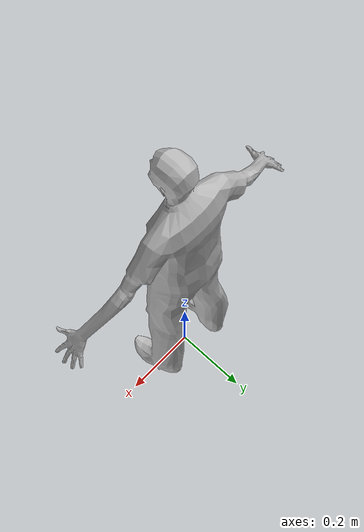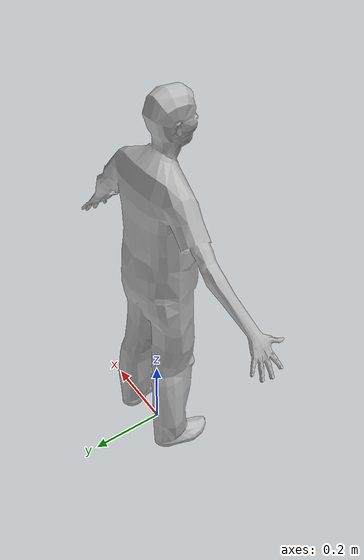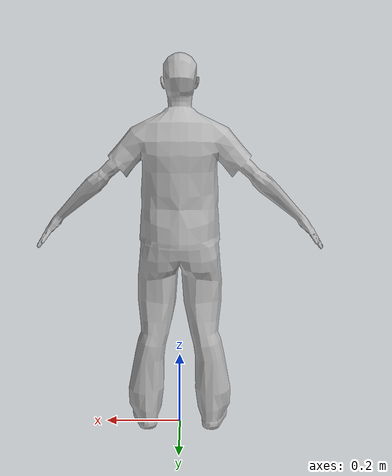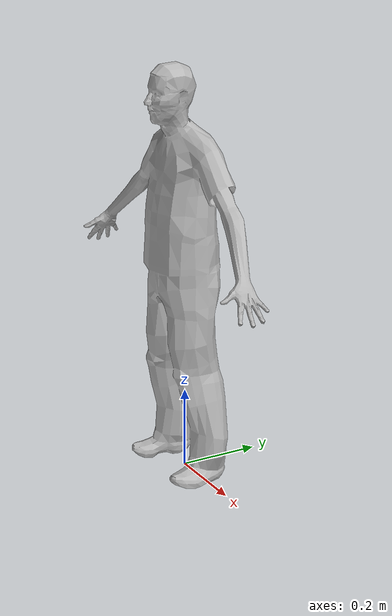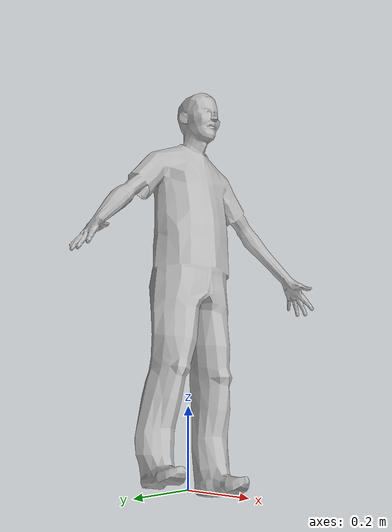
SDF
<?xml version="1.0" ?>
<sdf version="1.5">
  <model name="Patrick">
    <link name="link">
      <pose>0 0 0 0 0 0</pose>
      <collision name="collision">
        <geometry>
          <mesh>
            <uri>model://Patrick/Patrick.dae</uri>
            <scale>0.5 0.5 0.5</scale>
          </mesh>
        </geometry>
      </collision>
      <visual name="visual">
        <geometry>
          <mesh>
            <uri>model://Patrick/Patrick.dae</uri>
            <scale>0.5 0.5 0.5</scale>
          </mesh>
        </geometry>
      </visual>
    </link>
  </model>
</sdf>
